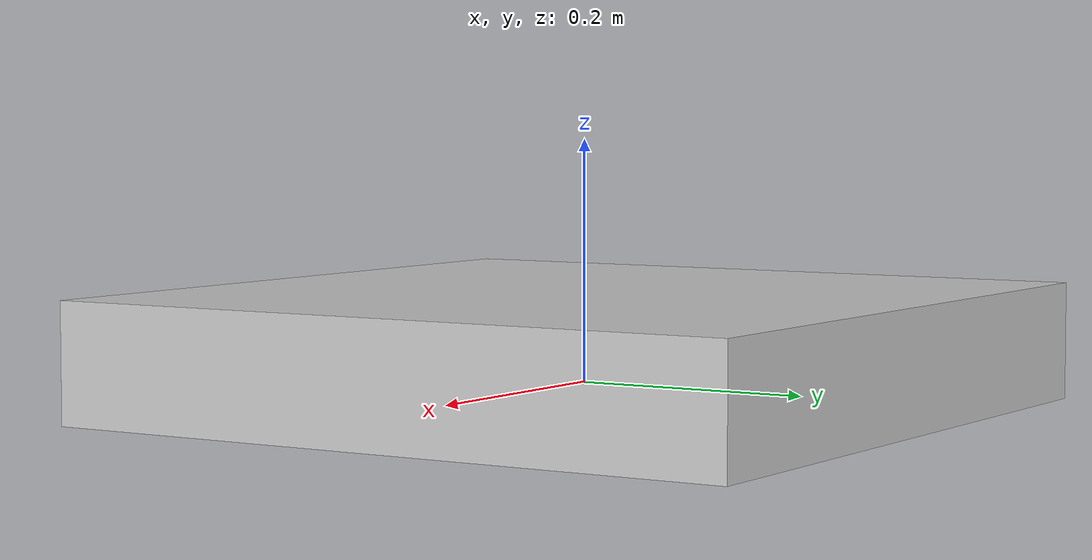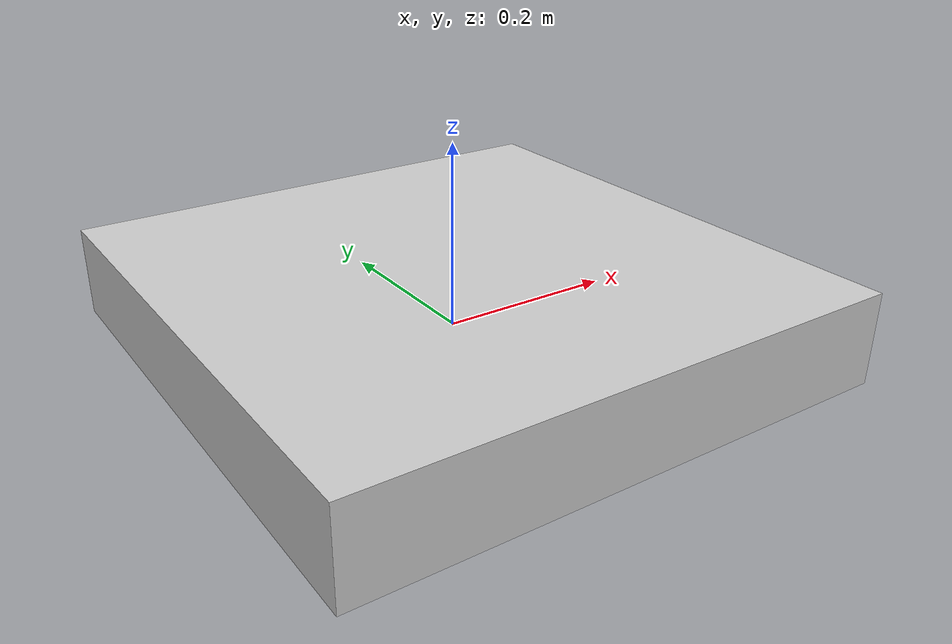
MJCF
<mujoco model="custom_env">
    <compiler angle="radian" inertiafromgeom="true"/>
    <option timestep="0.002"/>

    <worldbody>
        <!-- Add a table -->
        <body name="table" pos="0 0 0">
            <geom type="box" size="0.3 0.3 0.05" pos="0 0 0.025" rgba="0.8 0.8 0.8 1"/>
        </body>

        <!-- Add custom cameras -->
        <camera name="custom_camera1" pos="0.5 0.0 1.0" euler="0 -30 0" fovy="60"/>
        <camera name="custom_camera2" pos="-0.5 0.0 1.0" euler="0 -30 180" fovy="45"/>
    </worldbody>
</mujoco>
